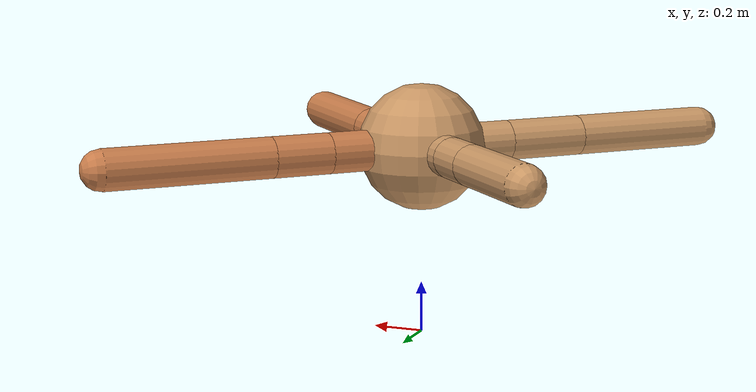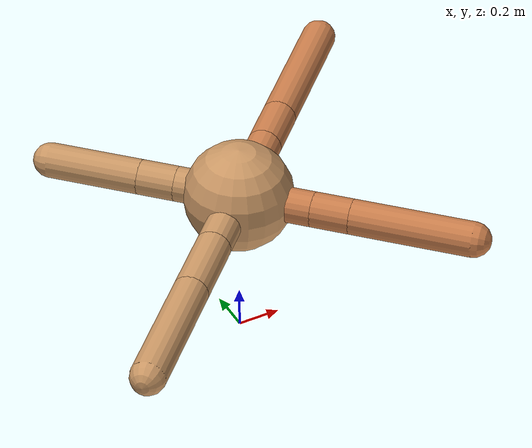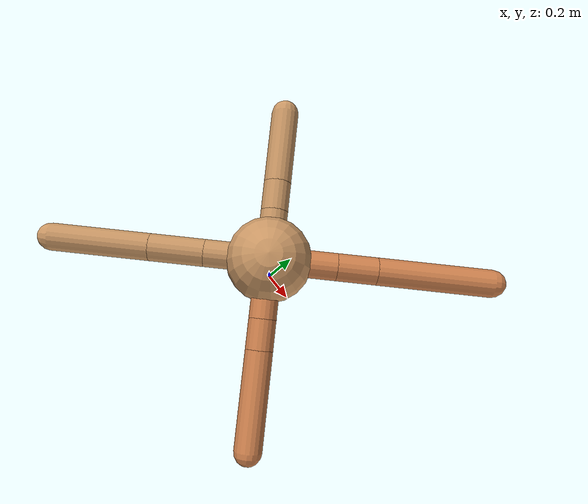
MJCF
<mujoco model="ant">
  <compiler angle="degree" coordinate="local" inertiafromgeom="true" />
  <option integrator="RK4" timestep="0.01" />
  <custom>
    <numeric data="0.0 0.0 0.55 1.0 0.0 0.0 0.0 0.0 1.0 0.0 -1.0 0.0 -1.0 0.0 1.0" name="init_qpos" />
  </custom>
  <default>
    <joint armature="1" damping="1" limited="true" />
    <geom conaffinity="0" condim="3" density="5.0" friction="1.5 0.1 0.1" margin="0.01" rgba="0.8 0.6 0.4 1" />
  </default>
  <worldbody>
    <body name="torso" pos="0 0 0.75">
      <geom name="torso_geom" pos="0 0 0" size="0.25" type="sphere" />

      <body name="front_left_leg" pos="0 0 0">
        <geom fromto="0.0 0.0 0.0 0.2764673862081414 0.2764673862081414 0.0" name="aux_1_geom" size="0.08" type="capsule" rgba=".8 .5 .3 1" />
        <body name="aux_1" pos="0.2764673862081414 0.2764673862081414 0.0">
          <joint axis="0 0 1" name="hip_1" pos="0.0 0.0 0.0" range="-40 40" type="hinge" />
          <geom fromto="0.0 0.0 0.0 0.16258106837762268 0.16258106837762268 0.0" name="left_leg_geom" size="0.08" type="capsule" rgba=".8 .5 .3 1" />
          <body pos="0.16258106837762268 0.16258106837762268 0.0" name="front_left_foot">
            <joint axis="-1 1 0" name="ankle_1" pos="0.0 0.0 0.0" range="30 100" type="hinge" />
            <geom fromto="0.0 0.0 0.0 0.4653924599807189 0.4653924599807189 0.0" name="left_ankle_geom" size="0.08" type="capsule" rgba=".8 .5 .3 1" />
          </body>
        </body>
      </body>
      <body name="front_right_leg" pos="0 0 0">
        <geom fromto="0.0 0.0 0.0 -0.203688947531459 0.203688947531459 0.0" name="aux_2_geom" size="0.08" type="capsule" />
        <body name="aux_2" pos="-0.203688947531459 0.203688947531459 0.0">
          <joint axis="0 0 1" name="hip_2" pos="0.0 0.0 0.0" range="-40 40" type="hinge" />
          <geom fromto="0.0 0.0 0.0 -0.12186713177899021 0.12186713177899021 0.0" name="right_leg_geom" size="0.08" type="capsule" />
          <body pos="-0.12186713177899021 0.12186713177899021 0.0" name="front_right_foot">
            <joint axis="1 1 0" name="ankle_2" pos="0.0 0.0 0.0" range="-100 -30" type="hinge" />
            <geom fromto="0.0 0.0 0.0 -0.30234276790791437 0.30234276790791437 0.0" name="right_ankle_geom" size="0.08" type="capsule" />
          </body>
        </body>
      </body>
      <body name="left_back_leg" pos="0 0 0">
        <geom fromto="0.0 0.0 0.0 -0.26384871161389134 -0.26384871161389134 0.0" name="aux_3_geom" size="0.08" type="capsule" />
        <body name="aux_3" pos="-0.26384871161389134 -0.26384871161389134 0.0">
          <joint axis="0 0 1" name="hip_3" pos="0.0 0.0 0.0" range="-40 40" type="hinge" />
          <geom fromto="0.0 0.0 0.0 -0.22494865366542494 -0.22494865366542494 0.0" name="back_leg_geom" size="0.08" type="capsule" />
          <body pos="-0.22494865366542494 -0.22494865366542494 0.0" name="left_back_foot">
            <joint axis="-1 1 0" name="ankle_3" pos="0.0 0.0 0.0" range="-100 -30" type="hinge" />
            <geom fromto="0.0 0.0 0.0 -0.40657997911047394 -0.40657997911047394 0.0" name="third_ankle_geom" size="0.08" type="capsule" />
          </body>
        </body>
      </body>
      <body name="right_back_leg" pos="0 0 0">
        <geom fromto="0.0 0.0 0.0 0.24245889222373665 -0.24245889222373665 0.0" name="aux_4_geom" size="0.08" type="capsule" rgba=".8 .5 .3 1" />
        <body name="aux_4" pos="0.24245889222373665 -0.24245889222373665 0.0">
          <joint axis="0 0 1" name="hip_4" pos="0.0 0.0 0.0" range="-40 40" type="hinge" />
          <geom fromto="0.0 0.0 0.0 0.12446656904542037 -0.12446656904542037 0.0" name="rightback_leg_geom" size="0.08" type="capsule" rgba=".8 .5 .3 1" />
          <body pos="0.12446656904542037 -0.12446656904542037 0.0" name="right_back_foot">
            <joint axis="1 1 0" name="ankle_4" pos="0.0 0.0 0.0" range="30 100" type="hinge" />
            <geom fromto="0.0 0.0 0.0 0.3917767904938746 -0.3917767904938746 0.0" name="fourth_ankle_geom" size="0.08" type="capsule" rgba=".8 .5 .3 1" />
          </body>
        </body>
      </body>
    </body>
  </worldbody>
  <actuator>
    <motor ctrllimited="true" ctrlrange="-1.0 1.0" joint="hip_4" gear="150" />
    <motor ctrllimited="true" ctrlrange="-1.0 1.0" joint="ankle_4" gear="150" />
    <motor ctrllimited="true" ctrlrange="-1.0 1.0" joint="hip_1" gear="150" />
    <motor ctrllimited="true" ctrlrange="-1.0 1.0" joint="ankle_1" gear="150" />
    <motor ctrllimited="true" ctrlrange="-1.0 1.0" joint="hip_2" gear="150" />
    <motor ctrllimited="true" ctrlrange="-1.0 1.0" joint="ankle_2" gear="150" />
    <motor ctrllimited="true" ctrlrange="-1.0 1.0" joint="hip_3" gear="150" />
    <motor ctrllimited="true" ctrlrange="-1.0 1.0" joint="ankle_3" gear="150" />
  </actuator>
</mujoco>
